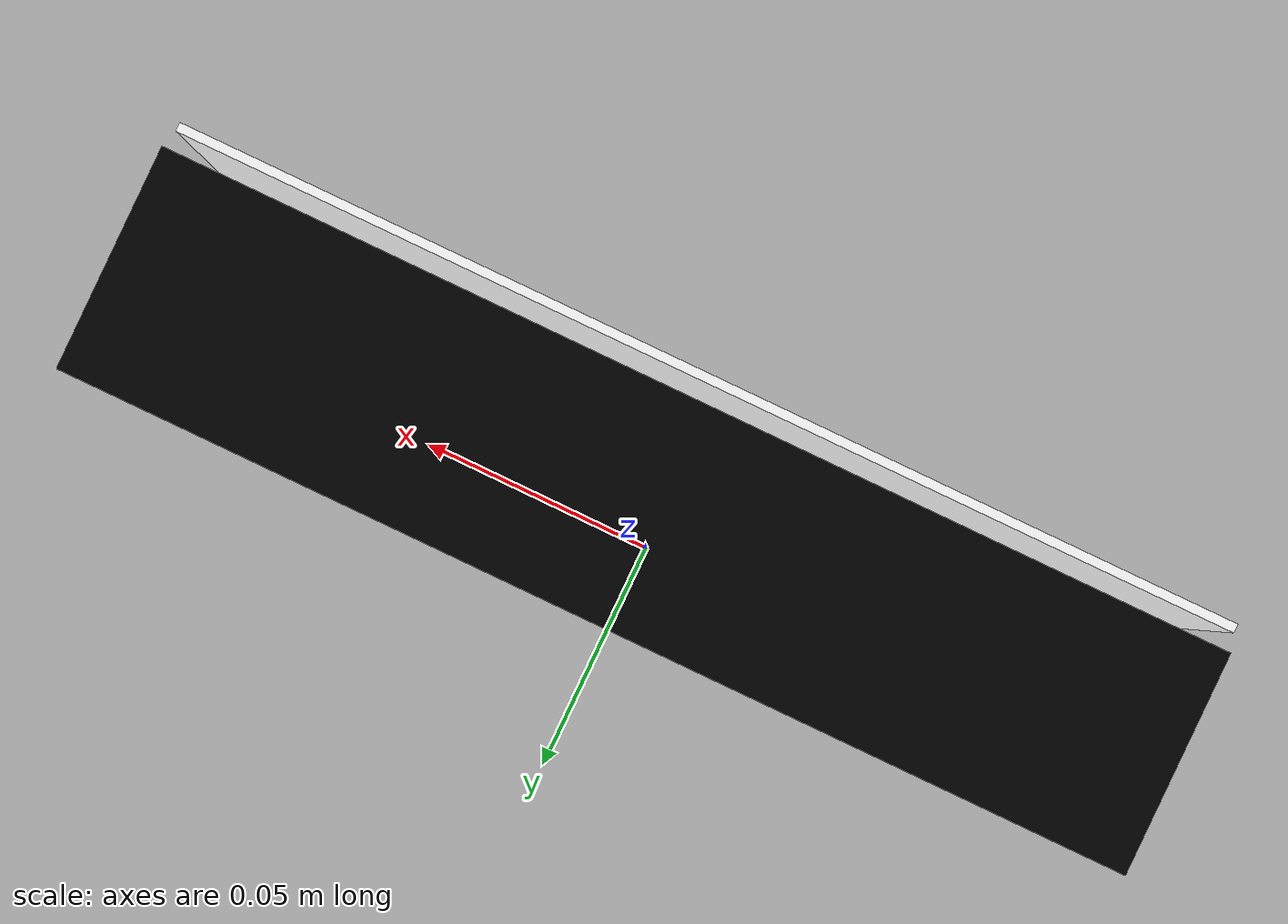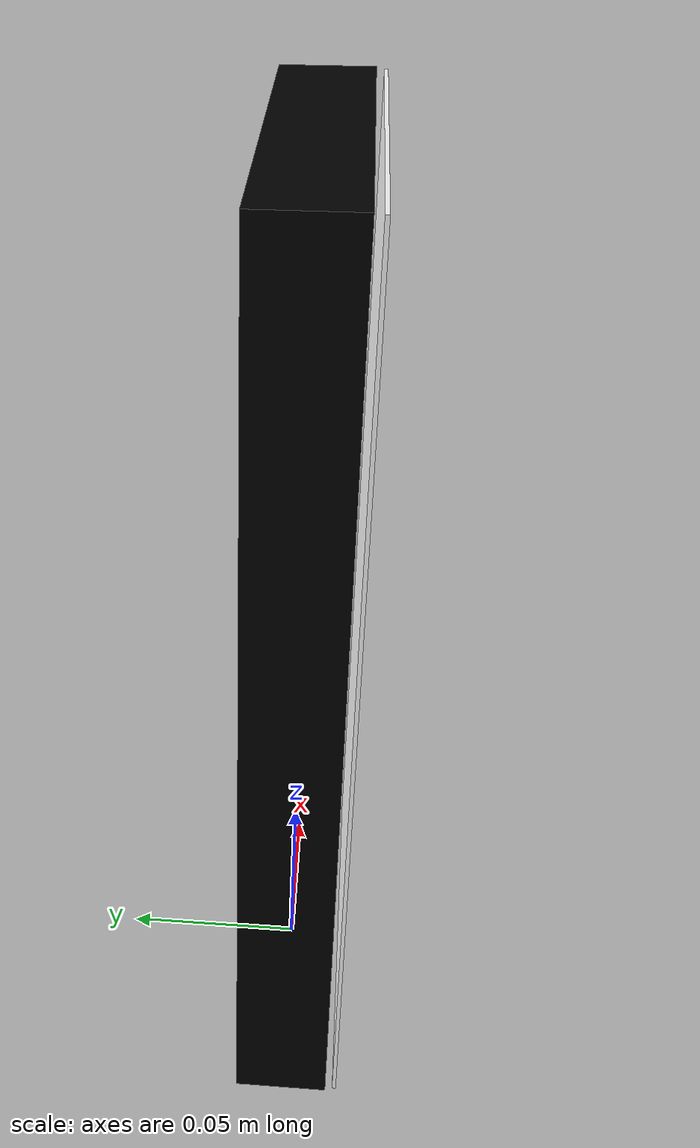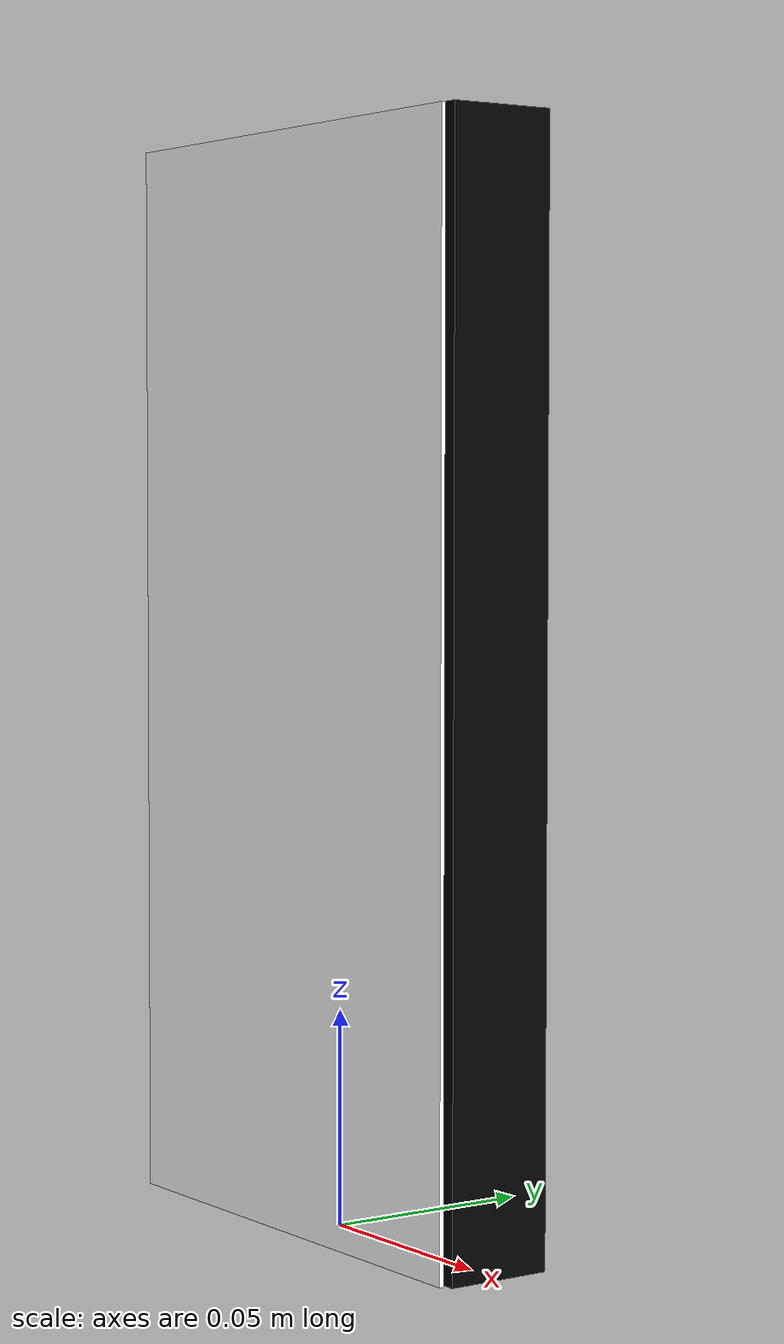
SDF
<?xml version='1.0'?>
<sdf version="1.9">
  <model name="traffic_light">
    <static>0</static>

    <joint name="world_fixed" type="fixed">
      <parent>world</parent>
      <child>light_base</child>
    </joint>

    <link name="light_base">
      <pose>0 0 0.125 0 0 0</pose>
      <visual name="base_black">
        <geometry><box><size>0.12 0.025 0.25</size></box></geometry>
        <material>
          <ambient>0 0 0 1</ambient>
          <diffuse>0 0 0 1</diffuse>
          <specular>0.1 0.1 0.1 1</specular>
        </material>
      </visual>
    </link>

    <link name="red_slide">
      <pose>0 -0.015 0.125 0 0 0</pose>
      <inertial><mass>0.01</mass><inertia><ixx>1e-5</ixx><iyy>1e-5</iyy><izz>1e-5</izz></inertia></inertial>
      <visual name="red_v">
        <geometry><box><size>0.119 0.001 0.249</size></box></geometry>
        <material>
          <ambient>1 1 1 1</ambient><diffuse>1 1 1 1</diffuse>
          <pbr><metal><albedo_map>model://turtlebot3_autorace_2020/traffic_light/materials/textures/traffic_light_red.png</albedo_map></metal></pbr>
        </material>
      </visual>
    </link>

    <link name="yellow_slide">
      <pose>0 0 0.125 0 0 0</pose>
      <inertial><mass>0.01</mass><inertia><ixx>1e-5</ixx><iyy>1e-5</iyy><izz>1e-5</izz></inertia></inertial>
      <visual name="yel_v">
        <geometry><box><size>0.119 0.001 0.249</size></box></geometry>
        <material>
          <ambient>1 1 1 1</ambient><diffuse>1 1 1 1</diffuse>
          <pbr><metal><albedo_map>model://turtlebot3_autorace_2020/traffic_light/materials/textures/traffic_light_yellow.png</albedo_map></metal></pbr>
        </material>
      </visual>
    </link>

    <link name="green_slide">
      <pose>0 0 0.125 0 0 0</pose>
      <inertial><mass>0.01</mass><inertia><ixx>1e-5</ixx><iyy>1e-5</iyy><izz>1e-5</izz></inertia></inertial>
      <visual name="grn_v">
        <geometry><box><size>0.119 0.001 0.249</size></box></geometry>
        <material>
          <ambient>1 1 1 1</ambient><diffuse>1 1 1 1</diffuse>
          <pbr><metal><albedo_map>model://turtlebot3_autorace_2020/traffic_light/materials/textures/traffic_light_green.png</albedo_map></metal></pbr>
        </material>
      </visual>
    </link>

    <joint name="red_joint" type="prismatic"><parent>light_base</parent><child>red_slide</child><axis><xyz>0 1 0</xyz><limit><lower>0</lower><upper>0.015</upper></limit></axis></joint>
    <joint name="yellow_joint" type="prismatic"><parent>light_base</parent><child>yellow_slide</child><axis><xyz>0 1 0</xyz><limit><lower>-0.016</lower><upper>0</upper></limit></axis></joint>
    <joint name="green_joint" type="prismatic"><parent>light_base</parent><child>green_slide</child><axis><xyz>0 1 0</xyz><limit><lower>-0.017</lower><upper>0</upper></limit></axis></joint>

    <plugin filename="gz-sim-joint-position-controller-system" name="gz::sim::systems::JointPositionController"><joint_name>red_joint</joint_name><p_gain>20</p_gain><d_gain>0.5</d_gain></plugin>
    <plugin filename="gz-sim-joint-position-controller-system" name="gz::sim::systems::JointPositionController"><joint_name>yellow_joint</joint_name><p_gain>20</p_gain><d_gain>0.5</d_gain></plugin>
    <plugin filename="gz-sim-joint-position-controller-system" name="gz::sim::systems::JointPositionController"><joint_name>green_joint</joint_name><p_gain>20</p_gain><d_gain>0.5</d_gain></plugin>
  </model>
</sdf>
